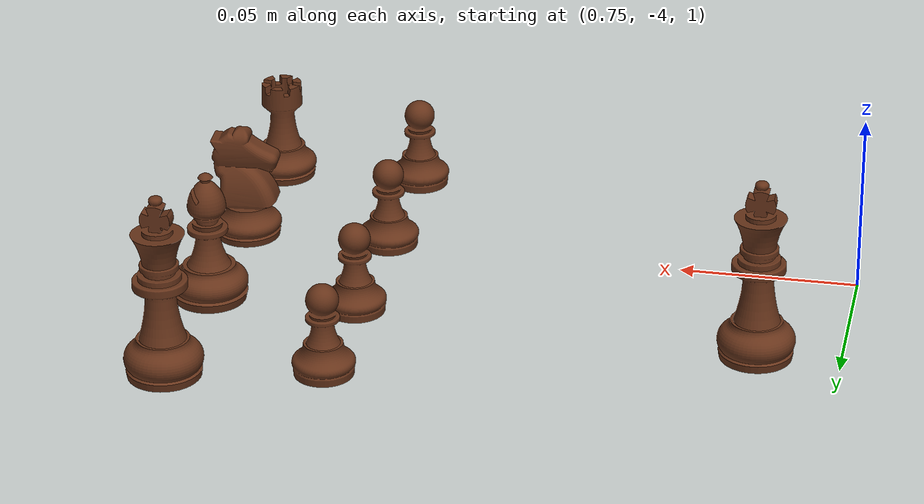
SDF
<sdf version="1.7">
 <world name="default">
  <model name="ground_plane">
   <static>1</static>
   <link name="link">
    <collision name="collision">
     <geometry><plane><normal>0 0 1</normal><size>100 100</size></plane></geometry>
     <surface>
      <contact><collide_bitmask>65535</collide_bitmask></contact>
      <friction><ode><mu>100</mu><mu2>50</mu2></ode></friction>
     </surface>
    </collision>
    <visual name="visual">
     <cast_shadows>0</cast_shadows>
     <geometry><plane><normal>0 0 1</normal><size>100 100</size></plane></geometry>
     <material>
      <script><uri>file://media/materials/scripts/gazebo.material</uri><name>Gazebo/Grey</name></script>
     </material>
    </visual>
   </link>
  </model>
  <model name="king_black">
   <static>0</static>
   <link name="link_0">
    <inertial>
     <mass>0.01</mass>
     <inertia><ixx>1e-06</ixx><ixy>0</ixy><ixz>0</ixz><iyy>1e-06</iyy><iyz>0</iyz><izz>5e-07</izz></inertia>
    </inertial>
    <kinematic>1</kinematic>
    <visual name="visual">
     <geometry><mesh><uri>model://king_black/meshes/king.dae</uri><scale>1 1 1</scale></mesh></geometry>
     <material>
      <lighting>1</lighting>
      <script><uri>file://media/materials/scripts/gazebo.material</uri><name>Gazebo/Grey</name></script>
      <shader type="vertex"><normal_map>__default__</normal_map></shader>
      <ambient>0.62 0.31 0.12 1</ambient>
      <diffuse>0.4 0.2 0.1 1</diffuse>
      <specular>0.01 0.01 0.01 1</specular>
      <emissive>0 0 0 1</emissive>
     </material>
    </visual>
    <collision name="collision">
     <pose>0 0 0.015 0 -0 0</pose>
     <geometry><cylinder><radius>0.005</radius><length>0.03</length></cylinder></geometry>
     <surface>
      <friction>
       <ode><mu>1</mu><mu2>1</mu2><fdir1>0 0 0</fdir1><slip1>0</slip1><slip2>0</slip2></ode>
       <torsional>
        <coefficient>1</coefficient>
        <patch_radius>0</patch_radius>
        <surface_radius>0</surface_radius>
        <use_patch_radius>1</use_patch_radius>
        <ode><slip>0</slip></ode>
       </torsional>
      </friction>
      <bounce><restitution_coefficient>0</restitution_coefficient><threshold>1e+06</threshold></bounce>
      <contact>
       <collide_without_contact>0</collide_without_contact>
       <collide_without_contact_bitmask>1</collide_without_contact_bitmask>
       <collide_bitmask>1</collide_bitmask>
       <ode>
        <soft_cfm>0</soft_cfm>
        <soft_erp>0.2</soft_erp>
        <kp>1e+13</kp>
        <kd>1</kd>
        <max_vel>0.01</max_vel>
        <min_depth>0</min_depth>
       </ode>
       <bullet>
        <split_impulse>1</split_impulse>
        <split_impulse_penetration_threshold>-0.01</split_impulse_penetration_threshold>
        <soft_cfm>0</soft_cfm>
        <soft_erp>0.2</soft_erp>
        <kp>1e+13</kp>
        <kd>1</kd>
       </bullet>
      </contact>
     </surface>
    </collision>
   </link>
   <static>0</static>
   <pose>0.911171 -3.86874 1.02621 0 -0 0</pose>
  </model>
  <model name="bishop_black_clone">
   <static>0</static>
   <link name="link_0">
    <inertial>
     <mass>0.01</mass>
     <inertia><ixx>1e-06</ixx><ixy>0</ixy><ixz>0</ixz><iyy>1e-06</iyy><iyz>0</iyz><izz>5e-07</izz></inertia>
    </inertial>
    <kinematic>1</kinematic>
    <visual name="visual">
     <geometry><mesh><uri>model://bishop_black/meshes/bishop.dae</uri><scale>1 1 1</scale></mesh></geometry>
     <material>
      <lighting>1</lighting>
      <script><uri>file://media/materials/scripts/gazebo.material</uri><name>Gazebo/Grey</name></script>
      <shader type="vertex"><normal_map>__default__</normal_map></shader>
      <ambient>0.62 0.31 0.12 1</ambient>
      <diffuse>0.4 0.2 0.1 1</diffuse>
      <specular>0.01 0.01 0.01 1</specular>
      <emissive>0 0 0 1</emissive>
     </material>
    </visual>
    <collision name="collision">
     <pose>0 0 0.015 0 -0 0</pose>
     <geometry><cylinder><radius>0.005</radius><length>0.03</length></cylinder></geometry>
     <surface>
      <friction><ode><mu>1</mu><mu2>1</mu2></ode></friction>
      <contact><ode><kp>1e+07</kp><kd>1</kd><max_vel>0.001</max_vel><min_depth>0.1</min_depth></ode></contact>
     </surface>
    </collision>
   </link>
   <pose>0.911171 -3.91086 1.02621 0 -0 0</pose>
  </model>
  <model name="knight_black_clone">
   <static>0</static>
   <link name="link_0">
    <inertial>
     <mass>0.01</mass>
     <inertia><ixx>1e-06</ixx><ixy>0</ixy><ixz>0</ixz><iyy>1e-06</iyy><iyz>0</iyz><izz>5e-07</izz></inertia>
    </inertial>
    <kinematic>1</kinematic>
    <visual name="visual">
     <geometry><mesh><uri>model://knight_black/meshes/knight.dae</uri><scale>1 1 1</scale></mesh></geometry>
     <material>
      <lighting>1</lighting>
      <script><uri>file://media/materials/scripts/gazebo.material</uri><name>Gazebo/Grey</name></script>
      <shader type="vertex"><normal_map>__default__</normal_map></shader>
      <ambient>0.62 0.31 0.12 1</ambient>
      <diffuse>0.4 0.2 0.1 1</diffuse>
      <specular>0.01 0.01 0.01 1</specular>
      <emissive>0 0 0 1</emissive>
     </material>
    </visual>
    <collision name="collision">
     <pose>0 0 0.015 0 -0 0</pose>
     <geometry><cylinder><radius>0.005</radius><length>0.03</length></cylinder></geometry>
     <surface>
      <friction><ode><mu>1</mu><mu2>1</mu2></ode></friction>
      <contact><ode><kp>1e+07</kp><kd>1</kd><max_vel>0.001</max_vel><min_depth>0.1</min_depth></ode></contact>
     </surface>
    </collision>
   </link>
   <pose>0.911078 -3.94873 1.02624 -0.000163 -0.002282 -1.49951</pose>
  </model>
  <model name="rook_black_clone">
   <static>0</static>
   <link name="link_0">
    <inertial>
     <mass>0.01</mass>
     <inertia><ixx>1e-06</ixx><ixy>0</ixy><ixz>0</ixz><iyy>1e-06</iyy><iyz>0</iyz><izz>5e-07</izz></inertia>
    </inertial>
    <kinematic>1</kinematic>
    <visual name="visual">
     <geometry><mesh><uri>model://rook_black/meshes/rook.dae</uri><scale>1 1 1</scale></mesh></geometry>
     <material>
      <lighting>1</lighting>
      <script><uri>file://media/materials/scripts/gazebo.material</uri><name>Gazebo/Grey</name></script>
      <shader type="vertex"><normal_map>__default__</normal_map></shader>
      <ambient>0.62 0.31 0.12 1</ambient>
      <diffuse>0.4 0.2 0.1 1</diffuse>
      <specular>0.01 0.01 0.01 1</specular>
      <emissive>0 0 0 1</emissive>
     </material>
    </visual>
    <collision name="collision">
     <pose>0 0 0.015 0 -0 0</pose>
     <geometry><cylinder><radius>0.005</radius><length>0.03</length></cylinder></geometry>
     <surface>
      <friction><ode><mu>1</mu><mu2>1</mu2></ode></friction>
      <contact><ode><kp>1e+07</kp><kd>1</kd><max_vel>0.001</max_vel><min_depth>0.1</min_depth></ode></contact>
     </surface>
    </collision>
   </link>
   <pose>0.911071 -3.98717 1.02621 0 -0 0</pose>
  </model>
  <model name="pawn_black_clone_2">
   <static>0</static>
   <link name="link_0">
    <inertial>
     <mass>0.01</mass>
     <inertia><ixx>1e-06</ixx><ixy>0</ixy><ixz>0</ixz><iyy>1e-06</iyy><iyz>0</iyz><izz>5e-07</izz></inertia>
    </inertial>
    <kinematic>1</kinematic>
    <visual name="visual">
     <geometry><mesh><uri>model://pawn_black/meshes/pawn.dae</uri><scale>1 1 1</scale></mesh></geometry>
     <material>
      <lighting>1</lighting>
      <script><uri>file://media/materials/scripts/gazebo.material</uri><name>Gazebo/Grey</name></script>
      <shader type="vertex"><normal_map>__default__</normal_map></shader>
      <ambient>0.62 0.31 0.12 1</ambient>
      <diffuse>0.4 0.2 0.1 1</diffuse>
      <specular>0.01 0.01 0.01 1</specular>
      <emissive>0 0 0 1</emissive>
     </material>
    </visual>
    <collision name="collision">
     <pose>0 0 0.015 0 -0 0</pose>
     <geometry><cylinder><radius>0.005</radius><length>0.03</length></cylinder></geometry>
     <surface>
      <friction><ode><mu>1</mu><mu2>1</mu2></ode></friction>
      <contact><ode><kp>1e+07</kp><kd>1</kd><max_vel>0.001</max_vel><min_depth>0.1</min_depth></ode></contact>
     </surface>
    </collision>
   </link>
   <pose>0.872378 -3.87693 1.02621 0 -0 0</pose>
  </model>
  <model name="pawn_black_clone_3">
   <static>0</static>
   <link name="link_0">
    <inertial>
     <mass>0.01</mass>
     <inertia><ixx>1e-06</ixx><ixy>0</ixy><ixz>0</ixz><iyy>1e-06</iyy><iyz>0</iyz><izz>5e-07</izz></inertia>
    </inertial>
    <kinematic>1</kinematic>
    <visual name="visual">
     <geometry><mesh><uri>model://pawn_black/meshes/pawn.dae</uri><scale>1 1 1</scale></mesh></geometry>
     <material>
      <lighting>1</lighting>
      <script><uri>file://media/materials/scripts/gazebo.material</uri><name>Gazebo/Grey</name></script>
      <shader type="vertex"><normal_map>__default__</normal_map></shader>
      <ambient>0.62 0.31 0.12 1</ambient>
      <diffuse>0.4 0.2 0.1 1</diffuse>
      <specular>0.01 0.01 0.01 1</specular>
      <emissive>0 0 0 1</emissive>
     </material>
    </visual>
    <collision name="collision">
     <pose>0 0 0.015 0 -0 0</pose>
     <geometry><cylinder><radius>0.005</radius><length>0.03</length></cylinder></geometry>
     <surface>
      <friction><ode><mu>1</mu><mu2>1</mu2></ode></friction>
      <contact><ode><kp>1e+07</kp><kd>1</kd><max_vel>0.001</max_vel><min_depth>0.1</min_depth></ode></contact>
     </surface>
    </collision>
   </link>
   <pose>0.872378 -3.91116 1.02621 0 -0 0</pose>
  </model>
  <model name="pawn_black_clone_4">
   <static>0</static>
   <link name="link_0">
    <inertial>
     <mass>0.01</mass>
     <inertia><ixx>1e-06</ixx><ixy>0</ixy><ixz>0</ixz><iyy>1e-06</iyy><iyz>0</iyz><izz>5e-07</izz></inertia>
    </inertial>
    <kinematic>1</kinematic>
    <visual name="visual">
     <geometry><mesh><uri>model://pawn_black/meshes/pawn.dae</uri><scale>1 1 1</scale></mesh></geometry>
     <material>
      <lighting>1</lighting>
      <script><uri>file://media/materials/scripts/gazebo.material</uri><name>Gazebo/Grey</name></script>
      <shader type="vertex"><normal_map>__default__</normal_map></shader>
      <ambient>0.62 0.31 0.12 1</ambient>
      <diffuse>0.4 0.2 0.1 1</diffuse>
      <specular>0.01 0.01 0.01 1</specular>
      <emissive>0 0 0 1</emissive>
     </material>
    </visual>
    <collision name="collision">
     <pose>0 0 0.015 0 -0 0</pose>
     <geometry><cylinder><radius>0.005</radius><length>0.03</length></cylinder></geometry>
     <surface>
      <friction><ode><mu>1</mu><mu2>1</mu2></ode></friction>
      <contact><ode><kp>1e+07</kp><kd>1</kd><max_vel>0.001</max_vel><min_depth>0.1</min_depth></ode></contact>
     </surface>
    </collision>
   </link>
   <pose>0.872378 -3.94991 1.02621 0 -0 0</pose>
  </model>
  <model name="pawn_black_clone_5">
   <static>0</static>
   <link name="link_0">
    <inertial>
     <mass>0.01</mass>
     <inertia><ixx>1e-06</ixx><ixy>0</ixy><ixz>0</ixz><iyy>1e-06</iyy><iyz>0</iyz><izz>5e-07</izz></inertia>
    </inertial>
    <kinematic>1</kinematic>
    <visual name="visual">
     <geometry><mesh><uri>model://pawn_black/meshes/pawn.dae</uri><scale>1 1 1</scale></mesh></geometry>
     <material>
      <lighting>1</lighting>
      <script><uri>file://media/materials/scripts/gazebo.material</uri><name>Gazebo/Grey</name></script>
      <shader type="vertex"><normal_map>__default__</normal_map></shader>
      <ambient>0.62 0.31 0.12 1</ambient>
      <diffuse>0.4 0.2 0.1 1</diffuse>
      <specular>0.01 0.01 0.01 1</specular>
      <emissive>0 0 0 1</emissive>
     </material>
    </visual>
    <collision name="collision">
     <pose>0 0 0.015 0 -0 0</pose>
     <geometry><cylinder><radius>0.005</radius><length>0.03</length></cylinder></geometry>
     <surface>
      <friction><ode><mu>1</mu><mu2>1</mu2></ode></friction>
      <contact><ode><kp>1e+07</kp><kd>1</kd><max_vel>0.001</max_vel><min_depth>0.1</min_depth></ode></contact>
     </surface>
    </collision>
   </link>
   <pose>0.872378 -3.98897 1.02621 0 -0 0</pose>
  </model>
  <model name="king_black_0">
   <link name="link_0">
    <inertial>
     <mass>0.01</mass>
     <inertia>
      <ixx>0.166667</ixx>
      <ixy>0</ixy>
      <ixz>0</ixz>
      <iyy>0.166667</iyy>
      <iyz>0</iyz>
      <izz>0.166667</izz>
     </inertia>
    </inertial>
    <visual name="visual">
     <geometry>
      <mesh>
       <uri>/home/colin/chessrobot_simulation/catkin_ws/src/chessrobot_simulation/models/king_black/meshes/king.dae</uri>
       <scale>1 1 1</scale>
      </mesh>
     </geometry>
     <material>
      <lighting>1</lighting>
      <script><uri>file://media/materials/scripts/gazebo.material</uri><name>Gazebo/Grey</name></script>
      <shader type="vertex"><normal_map>__default__</normal_map></shader>
      <ambient>0.62 0.31 0.12 1</ambient>
      <diffuse>0.4 0.2 0.1 1</diffuse>
      <specular>0.01 0.01 0.01 1</specular>
      <emissive>0 0 0 1</emissive>
     </material>
    </visual>
    <collision name="collision">
     <geometry>
      <mesh>
       <uri>/home/colin/chessrobot_simulation/catkin_ws/src/chessrobot_simulation/models/king_black/meshes/king.dae</uri>
       <scale>1 1 1</scale>
      </mesh>
     </geometry>
     <surface>
      <friction>
       <ode><mu>1</mu><mu2>1</mu2><fdir1>0 0 0</fdir1><slip1>0</slip1><slip2>0</slip2></ode>
       <torsional>
        <coefficient>1</coefficient>
        <patch_radius>0</patch_radius>
        <surface_radius>0</surface_radius>
        <use_patch_radius>1</use_patch_radius>
        <ode><slip>0</slip></ode>
       </torsional>
      </friction>
      <bounce><restitution_coefficient>0</restitution_coefficient><threshold>1e+06</threshold></bounce>
      <contact>
       <collide_without_contact>0</collide_without_contact>
       <collide_without_contact_bitmask>1</collide_without_contact_bitmask>
       <collide_bitmask>1</collide_bitmask>
       <ode>
        <soft_cfm>0</soft_cfm>
        <soft_erp>0.2</soft_erp>
        <kp>1e+13</kp>
        <kd>1</kd>
        <max_vel>0.01</max_vel>
        <min_depth>0</min_depth>
       </ode>
       <bullet>
        <split_impulse>1</split_impulse>
        <split_impulse_penetration_threshold>-0.01</split_impulse_penetration_threshold>
        <soft_cfm>0</soft_cfm>
        <soft_erp>0.2</soft_erp>
        <kp>1e+13</kp>
        <kd>1</kd>
       </bullet>
      </contact>
     </surface>
    </collision>
   </link>
   <static>0</static>
   <pose>0.768656 -3.91237 1.02272 -0.000465 -0.001148 0.014393</pose>
  </model>
 </world>
</sdf>
